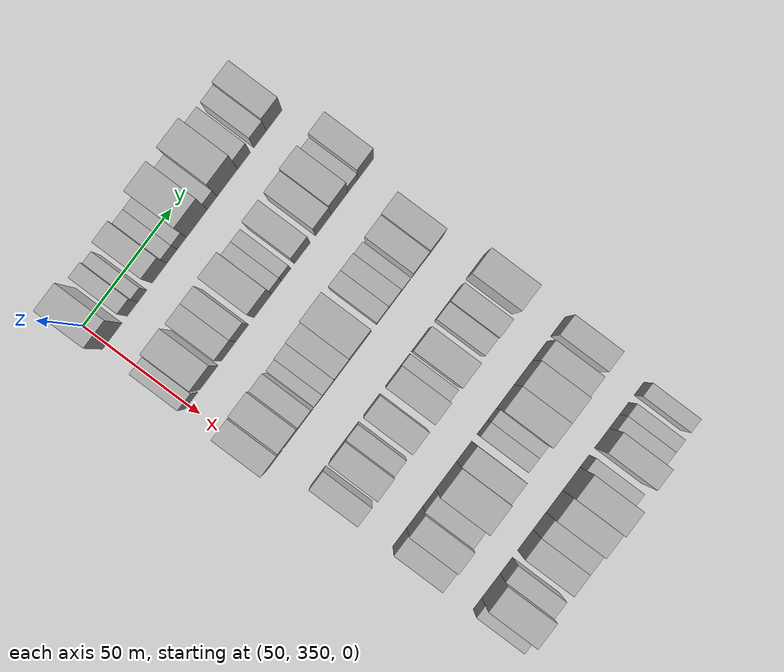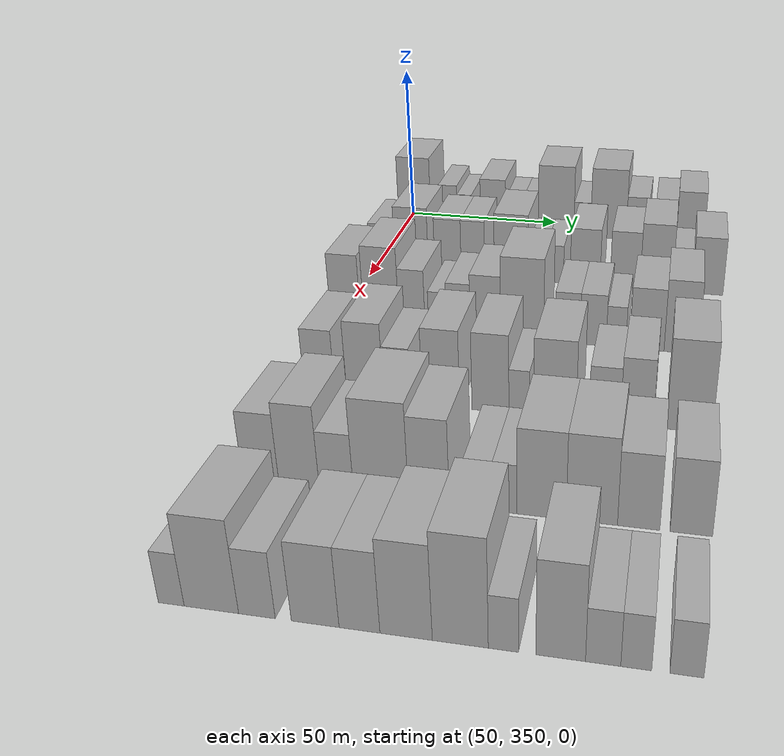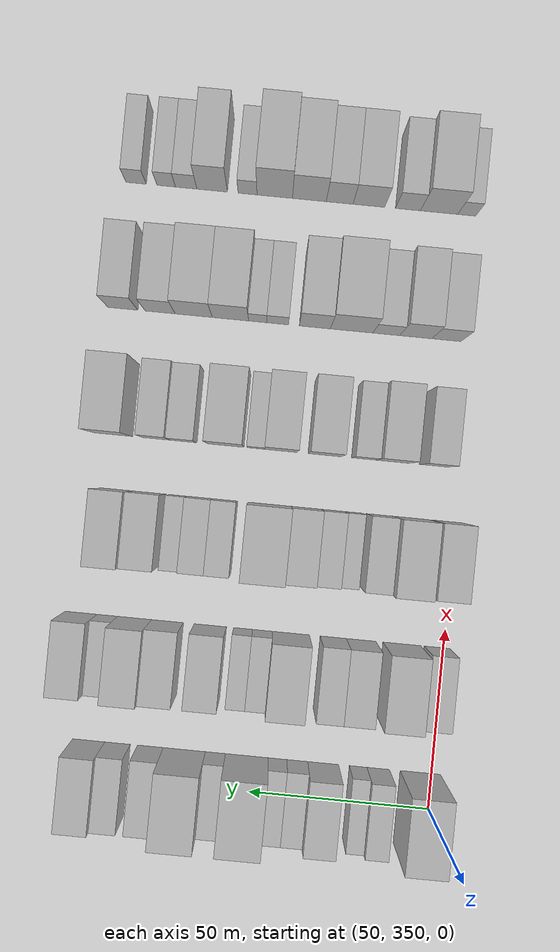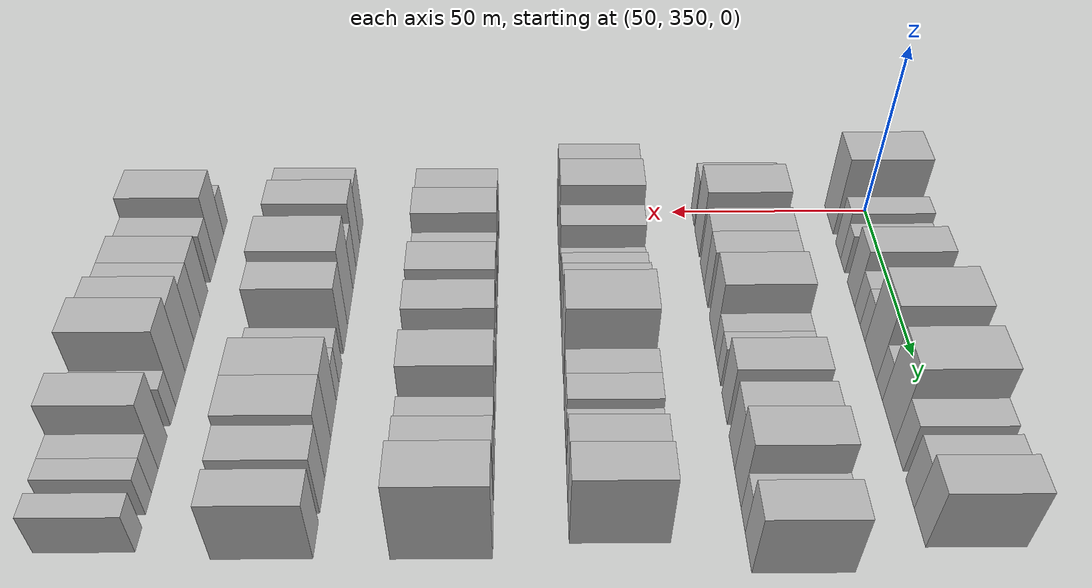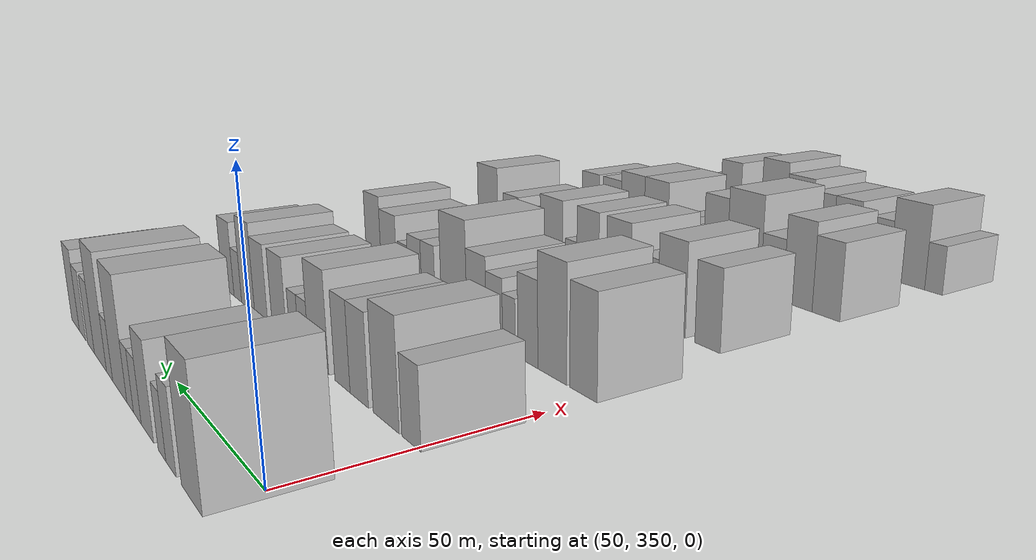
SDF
<sdf version="1.6">
 <world name="default">
  <model name="building_106">
   <static>1</static>
   <pose>50.0000 353.2103 0 0.000000 0.000000 0.000000</pose>
   <link name="link">
    <pose>0 0 12.00 0 0 0</pose>
    <collision name="collision"><geometry><box><size>20.0000 11.1864 24.0000</size></box></geometry></collision>
    <visual name="visual">
     <cast_shadows>0</cast_shadows>
     <geometry><box><size>20.0000 11.1864 24.0000</size></box></geometry>
     <material>
      <script>
       <uri>model://HANNAS_wall/materials/scripts</uri>
       <uri>model://HANNAS_wall/materials/textures</uri>
       <name>vrc/HANNAS_wall</name>
      </script>
     </material>
    </visual>
   </link>
  </model>
  <model name="building_107">
   <static>1</static>
   <pose>50.0000 364.9234 0 0.000000 0.000000 0.000000</pose>
   <link name="link">
    <pose>0 0 7.50 0 0 0</pose>
    <collision name="collision"><geometry><box><size>20.0000 6.2398 15.0000</size></box></geometry></collision>
    <visual name="visual">
     <cast_shadows>0</cast_shadows>
     <geometry><box><size>20.0000 6.2398 15.0000</size></box></geometry>
     <material>
      <script>
       <uri>model://HANNAS_wall/materials/scripts</uri>
       <uri>model://HANNAS_wall/materials/textures</uri>
       <name>vrc/HANNAS_wall</name>
      </script>
     </material>
    </visual>
   </link>
  </model>
  <model name="building_108">
   <static>1</static>
   <pose>50.0000 370.4922 0 0.000000 0.000000 0.000000</pose>
   <link name="link">
    <pose>0 0 6.00 0 0 0</pose>
    <collision name="collision"><geometry><box><size>20.0000 4.8976 12.0000</size></box></geometry></collision>
    <visual name="visual">
     <cast_shadows>0</cast_shadows>
     <geometry><box><size>20.0000 4.8976 12.0000</size></box></geometry>
     <material>
      <script>
       <uri>model://HANNAS_wall/materials/scripts</uri>
       <uri>model://HANNAS_wall/materials/textures</uri>
       <name>vrc/HANNAS_wall</name>
      </script>
     </material>
    </visual>
   </link>
  </model>
  <model name="building_109">
   <static>1</static>
   <pose>50.0000 380.2390 0 0.000000 0.000000 0.000000</pose>
   <link name="link">
    <pose>0 0 9.00 0 0 0</pose>
    <collision name="collision"><geometry><box><size>20.0000 8.5961 18.0000</size></box></geometry></collision>
    <visual name="visual">
     <cast_shadows>0</cast_shadows>
     <geometry><box><size>20.0000 8.5961 18.0000</size></box></geometry>
     <material>
      <script>
       <uri>model://HANNAS_wall/materials/scripts</uri>
       <uri>model://HANNAS_wall/materials/textures</uri>
       <name>vrc/HANNAS_wall</name>
      </script>
     </material>
    </visual>
   </link>
  </model>
  <model name="building_110">
   <static>1</static>
   <pose>50.0000 387.4565 0 0.000000 0.000000 0.000000</pose>
   <link name="link">
    <pose>0 0 6.00 0 0 0</pose>
    <collision name="collision"><geometry><box><size>20.0000 5.8388 12.0000</size></box></geometry></collision>
    <visual name="visual">
     <cast_shadows>0</cast_shadows>
     <geometry><box><size>20.0000 5.8388 12.0000</size></box></geometry>
     <material>
      <script>
       <uri>model://HANNAS_wall/materials/scripts</uri>
       <uri>model://HANNAS_wall/materials/textures</uri>
       <name>vrc/HANNAS_wall</name>
      </script>
     </material>
    </visual>
   </link>
  </model>
  <model name="building_111">
   <static>1</static>
   <pose>50.0000 392.9682 0 0.000000 0.000000 0.000000</pose>
   <link name="link">
    <pose>0 0 6.00 0 0 0</pose>
    <collision name="collision"><geometry><box><size>20.0000 5.1846 12.0000</size></box></geometry></collision>
    <visual name="visual">
     <cast_shadows>0</cast_shadows>
     <geometry><box><size>20.0000 5.1846 12.0000</size></box></geometry>
     <material>
      <script>
       <uri>model://HANNAS_wall/materials/scripts</uri>
       <uri>model://HANNAS_wall/materials/textures</uri>
       <name>vrc/HANNAS_wall</name>
      </script>
     </material>
    </visual>
   </link>
  </model>
  <model name="building_112">
   <static>1</static>
   <pose>50.0000 401.5114 0 0.000000 0.000000 0.000000</pose>
   <link name="link">
    <pose>0 0 12.00 0 0 0</pose>
    <collision name="collision"><geometry><box><size>20.0000 11.9017 24.0000</size></box></geometry></collision>
    <visual name="visual">
     <cast_shadows>0</cast_shadows>
     <geometry><box><size>20.0000 11.9017 24.0000</size></box></geometry>
     <material>
      <script>
       <uri>model://HANNAS_wall/materials/scripts</uri>
       <uri>model://HANNAS_wall/materials/textures</uri>
       <name>vrc/HANNAS_wall</name>
      </script>
     </material>
    </visual>
   </link>
  </model>
  <model name="building_113">
   <static>1</static>
   <pose>50.0000 410.2483 0 0.000000 0.000000 0.000000</pose>
   <link name="link">
    <pose>0 0 6.00 0 0 0</pose>
    <collision name="collision"><geometry><box><size>20.0000 5.5721 12.0000</size></box></geometry></collision>
    <visual name="visual">
     <cast_shadows>0</cast_shadows>
     <geometry><box><size>20.0000 5.5721 12.0000</size></box></geometry>
     <material>
      <script>
       <uri>model://HANNAS_wall/materials/scripts</uri>
       <uri>model://HANNAS_wall/materials/textures</uri>
       <name>vrc/HANNAS_wall</name>
      </script>
     </material>
    </visual>
   </link>
  </model>
  <model name="building_114">
   <static>1</static>
   <pose>50.0000 418.8916 0 0.000000 0.000000 0.000000</pose>
   <link name="link">
    <pose>0 0 12.00 0 0 0</pose>
    <collision name="collision"><geometry><box><size>20.0000 11.7144 24.0000</size></box></geometry></collision>
    <visual name="visual">
     <cast_shadows>0</cast_shadows>
     <geometry><box><size>20.0000 11.7144 24.0000</size></box></geometry>
     <material>
      <script>
       <uri>model://HANNAS_wall/materials/scripts</uri>
       <uri>model://HANNAS_wall/materials/textures</uri>
       <name>vrc/HANNAS_wall</name>
      </script>
     </material>
    </visual>
   </link>
  </model>
  <model name="building_115">
   <static>1</static>
   <pose>50.0000 428.3307 0 0.000000 0.000000 0.000000</pose>
   <link name="link">
    <pose>0 0 7.50 0 0 0</pose>
    <collision name="collision"><geometry><box><size>20.0000 7.1638 15.0000</size></box></geometry></collision>
    <visual name="visual">
     <cast_shadows>0</cast_shadows>
     <geometry><box><size>20.0000 7.1638 15.0000</size></box></geometry>
     <material>
      <script>
       <uri>model://HANNAS_wall/materials/scripts</uri>
       <uri>model://HANNAS_wall/materials/textures</uri>
       <name>vrc/HANNAS_wall</name>
      </script>
     </material>
    </visual>
   </link>
  </model>
  <model name="building_116">
   <static>1</static>
   <pose>50.0000 437.4541 0 0.000000 0.000000 0.000000</pose>
   <link name="link">
    <pose>0 0 7.50 0 0 0</pose>
    <collision name="collision"><geometry><box><size>20.0000 7.0830 15.0000</size></box></geometry></collision>
    <visual name="visual">
     <cast_shadows>0</cast_shadows>
     <geometry><box><size>20.0000 7.0830 15.0000</size></box></geometry>
     <material>
      <script>
       <uri>model://HANNAS_wall/materials/scripts</uri>
       <uri>model://HANNAS_wall/materials/textures</uri>
       <name>vrc/HANNAS_wall</name>
      </script>
     </material>
    </visual>
   </link>
  </model>
  <model name="building_117">
   <static>1</static>
   <pose>50.0000 445.4667 0 0.000000 0.000000 0.000000</pose>
   <link name="link">
    <pose>0 0 9.00 0 0 0</pose>
    <collision name="collision"><geometry><box><size>20.0000 8.9421 18.0000</size></box></geometry></collision>
    <visual name="visual">
     <cast_shadows>0</cast_shadows>
     <geometry><box><size>20.0000 8.9421 18.0000</size></box></geometry>
     <material>
      <script>
       <uri>model://HANNAS_wall/materials/scripts</uri>
       <uri>model://HANNAS_wall/materials/textures</uri>
       <name>vrc/HANNAS_wall</name>
      </script>
     </material>
    </visual>
   </link>
  </model>
  <model name="building_234">
   <static>1</static>
   <pose>85.0000 351.9586 0 0.000000 0.000000 0.000000</pose>
   <link name="link">
    <pose>0 0 7.50 0 0 0</pose>
    <collision name="collision"><geometry><box><size>20.0000 7.0922 15.0000</size></box></geometry></collision>
    <visual name="visual">
     <cast_shadows>0</cast_shadows>
     <geometry><box><size>20.0000 7.0922 15.0000</size></box></geometry>
     <material>
      <script>
       <uri>model://HANNAS_wall/materials/scripts</uri>
       <uri>model://HANNAS_wall/materials/textures</uri>
       <name>vrc/HANNAS_wall</name>
      </script>
     </material>
    </visual>
   </link>
  </model>
  <model name="building_235">
   <static>1</static>
   <pose>85.0000 361.7498 0 0.000000 0.000000 0.000000</pose>
   <link name="link">
    <pose>0 0 10.50 0 0 0</pose>
    <collision name="collision"><geometry><box><size>20.0000 10.4904 21.0000</size></box></geometry></collision>
    <visual name="visual">
     <cast_shadows>0</cast_shadows>
     <geometry><box><size>20.0000 10.4904 21.0000</size></box></geometry>
     <material>
      <script>
       <uri>model://HANNAS_wall/materials/scripts</uri>
       <uri>model://HANNAS_wall/materials/textures</uri>
       <name>vrc/HANNAS_wall</name>
      </script>
     </material>
    </visual>
   </link>
  </model>
  <model name="building_236">
   <static>1</static>
   <pose>85.0000 373.1111 0 0.000000 0.000000 0.000000</pose>
   <link name="link">
    <pose>0 0 9.00 0 0 0</pose>
    <collision name="collision"><geometry><box><size>20.0000 8.2321 18.0000</size></box></geometry></collision>
    <visual name="visual">
     <cast_shadows>0</cast_shadows>
     <geometry><box><size>20.0000 8.2321 18.0000</size></box></geometry>
     <material>
      <script>
       <uri>model://HANNAS_wall/materials/scripts</uri>
       <uri>model://HANNAS_wall/materials/textures</uri>
       <name>vrc/HANNAS_wall</name>
      </script>
     </material>
    </visual>
   </link>
  </model>
  <model name="building_237">
   <static>1</static>
   <pose>85.0000 380.8473 0 0.000000 0.000000 0.000000</pose>
   <link name="link">
    <pose>0 0 9.00 0 0 0</pose>
    <collision name="collision"><geometry><box><size>20.0000 7.2404 18.0000</size></box></geometry></collision>
    <visual name="visual">
     <cast_shadows>0</cast_shadows>
     <geometry><box><size>20.0000 7.2404 18.0000</size></box></geometry>
     <material>
      <script>
       <uri>model://HANNAS_wall/materials/scripts</uri>
       <uri>model://HANNAS_wall/materials/textures</uri>
       <name>vrc/HANNAS_wall</name>
      </script>
     </material>
    </visual>
   </link>
  </model>
  <model name="building_238">
   <static>1</static>
   <pose>85.0000 392.6241 0 0.000000 0.000000 0.000000</pose>
   <link name="link">
    <pose>0 0 10.50 0 0 0</pose>
    <collision name="collision"><geometry><box><size>20.0000 10.3131 21.0000</size></box></geometry></collision>
    <visual name="visual">
     <cast_shadows>0</cast_shadows>
     <geometry><box><size>20.0000 10.3131 21.0000</size></box></geometry>
     <material>
      <script>
       <uri>model://HANNAS_wall/materials/scripts</uri>
       <uri>model://HANNAS_wall/materials/textures</uri>
       <name>vrc/HANNAS_wall</name>
      </script>
     </material>
    </visual>
   </link>
  </model>
  <model name="building_239">
   <static>1</static>
   <pose>85.0000 400.5244 0 0.000000 0.000000 0.000000</pose>
   <link name="link">
    <pose>0 0 6.00 0 0 0</pose>
    <collision name="collision"><geometry><box><size>20.0000 5.4877 12.0000</size></box></geometry></collision>
    <visual name="visual">
     <cast_shadows>0</cast_shadows>
     <geometry><box><size>20.0000 5.4877 12.0000</size></box></geometry>
     <material>
      <script>
       <uri>model://HANNAS_wall/materials/scripts</uri>
       <uri>model://HANNAS_wall/materials/textures</uri>
       <name>vrc/HANNAS_wall</name>
      </script>
     </material>
    </visual>
   </link>
  </model>
  <model name="building_240">
   <static>1</static>
   <pose>85.0000 405.8968 0 0.000000 0.000000 0.000000</pose>
   <link name="link">
    <pose>0 0 6.00 0 0 0</pose>
    <collision name="collision"><geometry><box><size>20.0000 5.2571 12.0000</size></box></geometry></collision>
    <visual name="visual">
     <cast_shadows>0</cast_shadows>
     <geometry><box><size>20.0000 5.2571 12.0000</size></box></geometry>
     <material>
      <script>
       <uri>model://HANNAS_wall/materials/scripts</uri>
       <uri>model://HANNAS_wall/materials/textures</uri>
       <name>vrc/HANNAS_wall</name>
      </script>
     </material>
    </visual>
   </link>
  </model>
  <model name="building_241">
   <static>1</static>
   <pose>85.0000 415.0088 0 0.000000 0.000000 0.000000</pose>
   <link name="link">
    <pose>0 0 9.00 0 0 0</pose>
    <collision name="collision"><geometry><box><size>20.0000 8.9669 18.0000</size></box></geometry></collision>
    <visual name="visual">
     <cast_shadows>0</cast_shadows>
     <geometry><box><size>20.0000 8.9669 18.0000</size></box></geometry>
     <material>
      <script>
       <uri>model://HANNAS_wall/materials/scripts</uri>
       <uri>model://HANNAS_wall/materials/textures</uri>
       <name>vrc/HANNAS_wall</name>
      </script>
     </material>
    </visual>
   </link>
  </model>
  <model name="building_242">
   <static>1</static>
   <pose>85.0000 426.9141 0 0.000000 0.000000 0.000000</pose>
   <link name="link">
    <pose>0 0 9.00 0 0 0</pose>
    <collision name="collision"><geometry><box><size>20.0000 8.8438 18.0000</size></box></geometry></collision>
    <visual name="visual">
     <cast_shadows>0</cast_shadows>
     <geometry><box><size>20.0000 8.8438 18.0000</size></box></geometry>
     <material>
      <script>
       <uri>model://HANNAS_wall/materials/scripts</uri>
       <uri>model://HANNAS_wall/materials/textures</uri>
       <name>vrc/HANNAS_wall</name>
      </script>
     </material>
    </visual>
   </link>
  </model>
  <model name="building_243">
   <static>1</static>
   <pose>85.0000 436.0678 0 0.000000 0.000000 0.000000</pose>
   <link name="link">
    <pose>0 0 10.50 0 0 0</pose>
    <collision name="collision"><geometry><box><size>20.0000 9.4635 21.0000</size></box></geometry></collision>
    <visual name="visual">
     <cast_shadows>0</cast_shadows>
     <geometry><box><size>20.0000 9.4635 21.0000</size></box></geometry>
     <material>
      <script>
       <uri>model://HANNAS_wall/materials/scripts</uri>
       <uri>model://HANNAS_wall/materials/textures</uri>
       <name>vrc/HANNAS_wall</name>
      </script>
     </material>
    </visual>
   </link>
  </model>
  <model name="building_244">
   <static>1</static>
   <pose>85.0000 443.6584 0 0.000000 0.000000 0.000000</pose>
   <link name="link">
    <pose>0 0 6.00 0 0 0</pose>
    <collision name="collision"><geometry><box><size>20.0000 5.7178 12.0000</size></box></geometry></collision>
    <visual name="visual">
     <cast_shadows>0</cast_shadows>
     <geometry><box><size>20.0000 5.7178 12.0000</size></box></geometry>
     <material>
      <script>
       <uri>model://HANNAS_wall/materials/scripts</uri>
       <uri>model://HANNAS_wall/materials/textures</uri>
       <name>vrc/HANNAS_wall</name>
      </script>
     </material>
    </visual>
   </link>
  </model>
  <model name="building_245">
   <static>1</static>
   <pose>85.0000 450.9712 0 0.000000 0.000000 0.000000</pose>
   <link name="link">
    <pose>0 0 9.00 0 0 0</pose>
    <collision name="collision"><geometry><box><size>20.0000 8.9077 18.0000</size></box></geometry></collision>
    <visual name="visual">
     <cast_shadows>0</cast_shadows>
     <geometry><box><size>20.0000 8.9077 18.0000</size></box></geometry>
     <material>
      <script>
       <uri>model://HANNAS_wall/materials/scripts</uri>
       <uri>model://HANNAS_wall/materials/textures</uri>
       <name>vrc/HANNAS_wall</name>
      </script>
     </material>
    </visual>
   </link>
  </model>
  <model name="building_357">
   <static>1</static>
   <pose>120.0000 352.5232 0 0.000000 0.000000 0.000000</pose>
   <link name="link">
    <pose>0 0 10.50 0 0 0</pose>
    <collision name="collision"><geometry><box><size>20.0000 8.6559 21.0000</size></box></geometry></collision>
    <visual name="visual">
     <cast_shadows>0</cast_shadows>
     <geometry><box><size>20.0000 8.6559 21.0000</size></box></geometry>
     <material>
      <script>
       <uri>model://HANNAS_wall/materials/scripts</uri>
       <uri>model://HANNAS_wall/materials/textures</uri>
       <name>vrc/HANNAS_wall</name>
      </script>
     </material>
    </visual>
   </link>
  </model>
  <model name="building_358">
   <static>1</static>
   <pose>120.0000 362.8149 0 0.000000 0.000000 0.000000</pose>
   <link name="link">
    <pose>0 0 12.00 0 0 0</pose>
    <collision name="collision"><geometry><box><size>20.0000 9.9275 24.0000</size></box></geometry></collision>
    <visual name="visual">
     <cast_shadows>0</cast_shadows>
     <geometry><box><size>20.0000 9.9275 24.0000</size></box></geometry>
     <material>
      <script>
       <uri>model://HANNAS_wall/materials/scripts</uri>
       <uri>model://HANNAS_wall/materials/textures</uri>
       <name>vrc/HANNAS_wall</name>
      </script>
     </material>
    </visual>
   </link>
  </model>
  <model name="building_359">
   <static>1</static>
   <pose>120.0000 371.4363 0 0.000000 0.000000 0.000000</pose>
   <link name="link">
    <pose>0 0 9.00 0 0 0</pose>
    <collision name="collision"><geometry><box><size>20.0000 7.3154 18.0000</size></box></geometry></collision>
    <visual name="visual">
     <cast_shadows>0</cast_shadows>
     <geometry><box><size>20.0000 7.3154 18.0000</size></box></geometry>
     <material>
      <script>
       <uri>model://HANNAS_wall/materials/scripts</uri>
       <uri>model://HANNAS_wall/materials/textures</uri>
       <name>vrc/HANNAS_wall</name>
      </script>
     </material>
    </visual>
   </link>
  </model>
  <model name="building_360">
   <static>1</static>
   <pose>120.0000 378.5661 0 0.000000 0.000000 0.000000</pose>
   <link name="link">
    <pose>0 0 6.00 0 0 0</pose>
    <collision name="collision"><geometry><box><size>20.0000 4.9441 12.0000</size></box></geometry></collision>
    <visual name="visual">
     <cast_shadows>0</cast_shadows>
     <geometry><box><size>20.0000 4.9441 12.0000</size></box></geometry>
     <material>
      <script>
       <uri>model://HANNAS_wall/materials/scripts</uri>
       <uri>model://HANNAS_wall/materials/textures</uri>
       <name>vrc/HANNAS_wall</name>
      </script>
     </material>
    </visual>
   </link>
  </model>
  <model name="building_361">
   <static>1</static>
   <pose>120.0000 384.3277 0 0.000000 0.000000 0.000000</pose>
   <link name="link">
    <pose>0 0 7.50 0 0 0</pose>
    <collision name="collision"><geometry><box><size>20.0000 6.5793 15.0000</size></box></geometry></collision>
    <visual name="visual">
     <cast_shadows>0</cast_shadows>
     <geometry><box><size>20.0000 6.5793 15.0000</size></box></geometry>
     <material>
      <script>
       <uri>model://HANNAS_wall/materials/scripts</uri>
       <uri>model://HANNAS_wall/materials/textures</uri>
       <name>vrc/HANNAS_wall</name>
      </script>
     </material>
    </visual>
   </link>
  </model>
  <model name="building_362">
   <static>1</static>
   <pose>120.0000 391.7839 0 0.000000 0.000000 0.000000</pose>
   <link name="link">
    <pose>0 0 9.00 0 0 0</pose>
    <collision name="collision"><geometry><box><size>20.0000 8.3331 18.0000</size></box></geometry></collision>
    <visual name="visual">
     <cast_shadows>0</cast_shadows>
     <geometry><box><size>20.0000 8.3331 18.0000</size></box></geometry>
     <material>
      <script>
       <uri>model://HANNAS_wall/materials/scripts</uri>
       <uri>model://HANNAS_wall/materials/textures</uri>
       <name>vrc/HANNAS_wall</name>
      </script>
     </material>
    </visual>
   </link>
  </model>
  <model name="building_363">
   <static>1</static>
   <pose>120.0000 401.8527 0 0.000000 0.000000 0.000000</pose>
   <link name="link">
    <pose>0 0 12.00 0 0 0</pose>
    <collision name="collision"><geometry><box><size>20.0000 11.8045 24.0000</size></box></geometry></collision>
    <visual name="visual">
     <cast_shadows>0</cast_shadows>
     <geometry><box><size>20.0000 11.8045 24.0000</size></box></geometry>
     <material>
      <script>
       <uri>model://HANNAS_wall/materials/scripts</uri>
       <uri>model://HANNAS_wall/materials/textures</uri>
       <name>vrc/HANNAS_wall</name>
      </script>
     </material>
    </visual>
   </link>
  </model>
  <model name="building_364">
   <static>1</static>
   <pose>120.0000 414.1285 0 0.000000 0.000000 0.000000</pose>
   <link name="link">
    <pose>0 0 7.50 0 0 0</pose>
    <collision name="collision"><geometry><box><size>20.0000 6.7471 15.0000</size></box></geometry></collision>
    <visual name="visual">
     <cast_shadows>0</cast_shadows>
     <geometry><box><size>20.0000 6.7471 15.0000</size></box></geometry>
     <material>
      <script>
       <uri>model://HANNAS_wall/materials/scripts</uri>
       <uri>model://HANNAS_wall/materials/textures</uri>
       <name>vrc/HANNAS_wall</name>
      </script>
     </material>
    </visual>
   </link>
  </model>
  <model name="building_365">
   <static>1</static>
   <pose>120.0000 420.9926 0 0.000000 0.000000 0.000000</pose>
   <link name="link">
    <pose>0 0 7.50 0 0 0</pose>
    <collision name="collision"><geometry><box><size>20.0000 6.9811 15.0000</size></box></geometry></collision>
    <visual name="visual">
     <cast_shadows>0</cast_shadows>
     <geometry><box><size>20.0000 6.9811 15.0000</size></box></geometry>
     <material>
      <script>
       <uri>model://HANNAS_wall/materials/scripts</uri>
       <uri>model://HANNAS_wall/materials/textures</uri>
       <name>vrc/HANNAS_wall</name>
      </script>
     </material>
    </visual>
   </link>
  </model>
  <model name="building_366">
   <static>1</static>
   <pose>120.0000 427.0913 0 0.000000 0.000000 0.000000</pose>
   <link name="link">
    <pose>0 0 6.00 0 0 0</pose>
    <collision name="collision"><geometry><box><size>20.0000 5.2164 12.0000</size></box></geometry></collision>
    <visual name="visual">
     <cast_shadows>0</cast_shadows>
     <geometry><box><size>20.0000 5.2164 12.0000</size></box></geometry>
     <material>
      <script>
       <uri>model://HANNAS_wall/materials/scripts</uri>
       <uri>model://HANNAS_wall/materials/textures</uri>
       <name>vrc/HANNAS_wall</name>
      </script>
     </material>
    </visual>
   </link>
  </model>
  <model name="building_367">
   <static>1</static>
   <pose>120.0000 435.1870 0 0.000000 0.000000 0.000000</pose>
   <link name="link">
    <pose>0 0 9.00 0 0 0</pose>
    <collision name="collision"><geometry><box><size>20.0000 8.9749 18.0000</size></box></geometry></collision>
    <visual name="visual">
     <cast_shadows>0</cast_shadows>
     <geometry><box><size>20.0000 8.9749 18.0000</size></box></geometry>
     <material>
      <script>
       <uri>model://HANNAS_wall/materials/scripts</uri>
       <uri>model://HANNAS_wall/materials/textures</uri>
       <name>vrc/HANNAS_wall</name>
      </script>
     </material>
    </visual>
   </link>
  </model>
  <model name="building_368">
   <static>1</static>
   <pose>120.0000 444.1367 0 0.000000 0.000000 0.000000</pose>
   <link name="link">
    <pose>0 0 10.50 0 0 0</pose>
    <collision name="collision"><geometry><box><size>20.0000 8.9246 21.0000</size></box></geometry></collision>
    <visual name="visual">
     <cast_shadows>0</cast_shadows>
     <geometry><box><size>20.0000 8.9246 21.0000</size></box></geometry>
     <material>
      <script>
       <uri>model://HANNAS_wall/materials/scripts</uri>
       <uri>model://HANNAS_wall/materials/textures</uri>
       <name>vrc/HANNAS_wall</name>
      </script>
     </material>
    </visual>
   </link>
  </model>
  <model name="building_489">
   <static>1</static>
   <pose>155.0000 357.8309 0 0.000000 0.000000 0.000000</pose>
   <link name="link">
    <pose>0 0 9.00 0 0 0</pose>
    <collision name="collision"><geometry><box><size>20.0000 7.7563 18.0000</size></box></geometry></collision>
    <visual name="visual">
     <cast_shadows>0</cast_shadows>
     <geometry><box><size>20.0000 7.7563 18.0000</size></box></geometry>
     <material>
      <script>
       <uri>model://HANNAS_wall/materials/scripts</uri>
       <uri>model://HANNAS_wall/materials/textures</uri>
       <name>vrc/HANNAS_wall</name>
      </script>
     </material>
    </visual>
   </link>
  </model>
  <model name="building_490">
   <static>1</static>
   <pose>155.0000 369.3253 0 0.000000 0.000000 0.000000</pose>
   <link name="link">
    <pose>0 0 10.50 0 0 0</pose>
    <collision name="collision"><geometry><box><size>20.0000 9.2325 21.0000</size></box></geometry></collision>
    <visual name="visual">
     <cast_shadows>0</cast_shadows>
     <geometry><box><size>20.0000 9.2325 21.0000</size></box></geometry>
     <material>
      <script>
       <uri>model://HANNAS_wall/materials/scripts</uri>
       <uri>model://HANNAS_wall/materials/textures</uri>
       <name>vrc/HANNAS_wall</name>
      </script>
     </material>
    </visual>
   </link>
  </model>
  <model name="building_491">
   <static>1</static>
   <pose>155.0000 377.2664 0 0.000000 0.000000 0.000000</pose>
   <link name="link">
    <pose>0 0 7.50 0 0 0</pose>
    <collision name="collision"><geometry><box><size>20.0000 6.6496 15.0000</size></box></geometry></collision>
    <visual name="visual">
     <cast_shadows>0</cast_shadows>
     <geometry><box><size>20.0000 6.6496 15.0000</size></box></geometry>
     <material>
      <script>
       <uri>model://HANNAS_wall/materials/scripts</uri>
       <uri>model://HANNAS_wall/materials/textures</uri>
       <name>vrc/HANNAS_wall</name>
      </script>
     </material>
    </visual>
   </link>
  </model>
  <model name="building_492">
   <static>1</static>
   <pose>155.0000 388.1427 0 0.000000 0.000000 0.000000</pose>
   <link name="link">
    <pose>0 0 10.50 0 0 0</pose>
    <collision name="collision"><geometry><box><size>20.0000 9.1030 21.0000</size></box></geometry></collision>
    <visual name="visual">
     <cast_shadows>0</cast_shadows>
     <geometry><box><size>20.0000 9.1030 21.0000</size></box></geometry>
     <material>
      <script>
       <uri>model://HANNAS_wall/materials/scripts</uri>
       <uri>model://HANNAS_wall/materials/textures</uri>
       <name>vrc/HANNAS_wall</name>
      </script>
     </material>
    </visual>
   </link>
  </model>
  <model name="building_493">
   <static>1</static>
   <pose>155.0000 400.1454 0 0.000000 0.000000 0.000000</pose>
   <link name="link">
    <pose>0 0 10.50 0 0 0</pose>
    <collision name="collision"><geometry><box><size>20.0000 8.9024 21.0000</size></box></geometry></collision>
    <visual name="visual">
     <cast_shadows>0</cast_shadows>
     <geometry><box><size>20.0000 8.9024 21.0000</size></box></geometry>
     <material>
      <script>
       <uri>model://HANNAS_wall/materials/scripts</uri>
       <uri>model://HANNAS_wall/materials/textures</uri>
       <name>vrc/HANNAS_wall</name>
      </script>
     </material>
    </visual>
   </link>
  </model>
  <model name="building_494">
   <static>1</static>
   <pose>155.0000 407.0617 0 0.000000 0.000000 0.000000</pose>
   <link name="link">
    <pose>0 0 6.00 0 0 0</pose>
    <collision name="collision"><geometry><box><size>20.0000 4.9302 12.0000</size></box></geometry></collision>
    <visual name="visual">
     <cast_shadows>0</cast_shadows>
     <geometry><box><size>20.0000 4.9302 12.0000</size></box></geometry>
     <material>
      <script>
       <uri>model://HANNAS_wall/materials/scripts</uri>
       <uri>model://HANNAS_wall/materials/textures</uri>
       <name>vrc/HANNAS_wall</name>
      </script>
     </material>
    </visual>
   </link>
  </model>
  <model name="building_495">
   <static>1</static>
   <pose>155.0000 415.5650 0 0.000000 0.000000 0.000000</pose>
   <link name="link">
    <pose>0 0 10.50 0 0 0</pose>
    <collision name="collision"><geometry><box><size>20.0000 10.0763 21.0000</size></box></geometry></collision>
    <visual name="visual">
     <cast_shadows>0</cast_shadows>
     <geometry><box><size>20.0000 10.0763 21.0000</size></box></geometry>
     <material>
      <script>
       <uri>model://HANNAS_wall/materials/scripts</uri>
       <uri>model://HANNAS_wall/materials/textures</uri>
       <name>vrc/HANNAS_wall</name>
      </script>
     </material>
    </visual>
   </link>
  </model>
  <model name="building_496">
   <static>1</static>
   <pose>155.0000 427.2717 0 0.000000 0.000000 0.000000</pose>
   <link name="link">
    <pose>0 0 7.50 0 0 0</pose>
    <collision name="collision"><geometry><box><size>20.0000 7.3370 15.0000</size></box></geometry></collision>
    <visual name="visual">
     <cast_shadows>0</cast_shadows>
     <geometry><box><size>20.0000 7.3370 15.0000</size></box></geometry>
     <material>
      <script>
       <uri>model://HANNAS_wall/materials/scripts</uri>
       <uri>model://HANNAS_wall/materials/textures</uri>
       <name>vrc/HANNAS_wall</name>
      </script>
     </material>
    </visual>
   </link>
  </model>
  <model name="building_497">
   <static>1</static>
   <pose>155.0000 434.7221 0 0.000000 0.000000 0.000000</pose>
   <link name="link">
    <pose>0 0 9.00 0 0 0</pose>
    <collision name="collision"><geometry><box><size>20.0000 7.5639 18.0000</size></box></geometry></collision>
    <visual name="visual">
     <cast_shadows>0</cast_shadows>
     <geometry><box><size>20.0000 7.5639 18.0000</size></box></geometry>
     <material>
      <script>
       <uri>model://HANNAS_wall/materials/scripts</uri>
       <uri>model://HANNAS_wall/materials/textures</uri>
       <name>vrc/HANNAS_wall</name>
      </script>
     </material>
    </visual>
   </link>
  </model>
  <model name="building_498">
   <static>1</static>
   <pose>155.0000 446.7291 0 0.000000 0.000000 0.000000</pose>
   <link name="link">
    <pose>0 0 12.00 0 0 0</pose>
    <collision name="collision"><geometry><box><size>20.0000 10.4501 24.0000</size></box></geometry></collision>
    <visual name="visual">
     <cast_shadows>0</cast_shadows>
     <geometry><box><size>20.0000 10.4501 24.0000</size></box></geometry>
     <material>
      <script>
       <uri>model://HANNAS_wall/materials/scripts</uri>
       <uri>model://HANNAS_wall/materials/textures</uri>
       <name>vrc/HANNAS_wall</name>
      </script>
     </material>
    </visual>
   </link>
  </model>
  <model name="building_621">
   <static>1</static>
   <pose>190.0000 357.5613 0 0.000000 0.000000 0.000000</pose>
   <link name="link">
    <pose>0 0 9.00 0 0 0</pose>
    <collision name="collision"><geometry><box><size>20.0000 8.1006 18.0000</size></box></geometry></collision>
    <visual name="visual">
     <cast_shadows>0</cast_shadows>
     <geometry><box><size>20.0000 8.1006 18.0000</size></box></geometry>
     <material>
      <script>
       <uri>model://HANNAS_wall/materials/scripts</uri>
       <uri>model://HANNAS_wall/materials/textures</uri>
       <name>vrc/HANNAS_wall</name>
      </script>
     </material>
    </visual>
   </link>
  </model>
  <model name="building_622">
   <static>1</static>
   <pose>190.0000 366.0804 0 0.000000 0.000000 0.000000</pose>
   <link name="link">
    <pose>0 0 10.50 0 0 0</pose>
    <collision name="collision"><geometry><box><size>20.0000 8.9378 21.0000</size></box></geometry></collision>
    <visual name="visual">
     <cast_shadows>0</cast_shadows>
     <geometry><box><size>20.0000 8.9378 21.0000</size></box></geometry>
     <material>
      <script>
       <uri>model://HANNAS_wall/materials/scripts</uri>
       <uri>model://HANNAS_wall/materials/textures</uri>
       <name>vrc/HANNAS_wall</name>
      </script>
     </material>
    </visual>
   </link>
  </model>
  <model name="building_623">
   <static>1</static>
   <pose>190.0000 374.2909 0 0.000000 0.000000 0.000000</pose>
   <link name="link">
    <pose>0 0 7.50 0 0 0</pose>
    <collision name="collision"><geometry><box><size>20.0000 7.4830 15.0000</size></box></geometry></collision>
    <visual name="visual">
     <cast_shadows>0</cast_shadows>
     <geometry><box><size>20.0000 7.4830 15.0000</size></box></geometry>
     <material>
      <script>
       <uri>model://HANNAS_wall/materials/scripts</uri>
       <uri>model://HANNAS_wall/materials/textures</uri>
       <name>vrc/HANNAS_wall</name>
      </script>
     </material>
    </visual>
   </link>
  </model>
  <model name="building_624">
   <static>1</static>
   <pose>190.0000 383.9547 0 0.000000 0.000000 0.000000</pose>
   <link name="link">
    <pose>0 0 12.00 0 0 0</pose>
    <collision name="collision"><geometry><box><size>20.0000 11.8447 24.0000</size></box></geometry></collision>
    <visual name="visual">
     <cast_shadows>0</cast_shadows>
     <geometry><box><size>20.0000 11.8447 24.0000</size></box></geometry>
     <material>
      <script>
       <uri>model://HANNAS_wall/materials/scripts</uri>
       <uri>model://HANNAS_wall/materials/textures</uri>
       <name>vrc/HANNAS_wall</name>
      </script>
     </material>
    </visual>
   </link>
  </model>
  <model name="building_625">
   <static>1</static>
   <pose>190.0000 394.1983 0 0.000000 0.000000 0.000000</pose>
   <link name="link">
    <pose>0 0 10.50 0 0 0</pose>
    <collision name="collision"><geometry><box><size>20.0000 8.6425 21.0000</size></box></geometry></collision>
    <visual name="visual">
     <cast_shadows>0</cast_shadows>
     <geometry><box><size>20.0000 8.6425 21.0000</size></box></geometry>
     <material>
      <script>
       <uri>model://HANNAS_wall/materials/scripts</uri>
       <uri>model://HANNAS_wall/materials/textures</uri>
       <name>vrc/HANNAS_wall</name>
      </script>
     </material>
    </visual>
   </link>
  </model>
  <model name="building_626">
   <static>1</static>
   <pose>190.0000 404.5116 0 0.000000 0.000000 0.000000</pose>
   <link name="link">
    <pose>0 0 6.00 0 0 0</pose>
    <collision name="collision"><geometry><box><size>20.0000 5.9841 12.0000</size></box></geometry></collision>
    <visual name="visual">
     <cast_shadows>0</cast_shadows>
     <geometry><box><size>20.0000 5.9841 12.0000</size></box></geometry>
     <material>
      <script>
       <uri>model://HANNAS_wall/materials/scripts</uri>
       <uri>model://HANNAS_wall/materials/textures</uri>
       <name>vrc/HANNAS_wall</name>
      </script>
     </material>
    </visual>
   </link>
  </model>
  <model name="building_627">
   <static>1</static>
   <pose>190.0000 410.0540 0 0.000000 0.000000 0.000000</pose>
   <link name="link">
    <pose>0 0 6.00 0 0 0</pose>
    <collision name="collision"><geometry><box><size>20.0000 5.1006 12.0000</size></box></geometry></collision>
    <visual name="visual">
     <cast_shadows>0</cast_shadows>
     <geometry><box><size>20.0000 5.1006 12.0000</size></box></geometry>
     <material>
      <script>
       <uri>model://HANNAS_wall/materials/scripts</uri>
       <uri>model://HANNAS_wall/materials/textures</uri>
       <name>vrc/HANNAS_wall</name>
      </script>
     </material>
    </visual>
   </link>
  </model>
  <model name="building_628">
   <static>1</static>
   <pose>190.0000 417.6488 0 0.000000 0.000000 0.000000</pose>
   <link name="link">
    <pose>0 0 10.50 0 0 0</pose>
    <collision name="collision"><geometry><box><size>20.0000 10.0891 21.0000</size></box></geometry></collision>
    <visual name="visual">
     <cast_shadows>0</cast_shadows>
     <geometry><box><size>20.0000 10.0891 21.0000</size></box></geometry>
     <material>
      <script>
       <uri>model://HANNAS_wall/materials/scripts</uri>
       <uri>model://HANNAS_wall/materials/textures</uri>
       <name>vrc/HANNAS_wall</name>
      </script>
     </material>
    </visual>
   </link>
  </model>
  <model name="building_629">
   <static>1</static>
   <pose>190.0000 427.8553 0 0.000000 0.000000 0.000000</pose>
   <link name="link">
    <pose>0 0 10.50 0 0 0</pose>
    <collision name="collision"><geometry><box><size>20.0000 10.3238 21.0000</size></box></geometry></collision>
    <visual name="visual">
     <cast_shadows>0</cast_shadows>
     <geometry><box><size>20.0000 10.3238 21.0000</size></box></geometry>
     <material>
      <script>
       <uri>model://HANNAS_wall/materials/scripts</uri>
       <uri>model://HANNAS_wall/materials/textures</uri>
       <name>vrc/HANNAS_wall</name>
      </script>
     </material>
    </visual>
   </link>
  </model>
  <model name="building_630">
   <static>1</static>
   <pose>190.0000 437.2240 0 0.000000 0.000000 0.000000</pose>
   <link name="link">
    <pose>0 0 9.00 0 0 0</pose>
    <collision name="collision"><geometry><box><size>20.0000 8.4136 18.0000</size></box></geometry></collision>
    <visual name="visual">
     <cast_shadows>0</cast_shadows>
     <geometry><box><size>20.0000 8.4136 18.0000</size></box></geometry>
     <material>
      <script>
       <uri>model://HANNAS_wall/materials/scripts</uri>
       <uri>model://HANNAS_wall/materials/textures</uri>
       <name>vrc/HANNAS_wall</name>
      </script>
     </material>
    </visual>
   </link>
  </model>
  <model name="building_631">
   <static>1</static>
   <pose>190.0000 447.5960 0 0.000000 0.000000 0.000000</pose>
   <link name="link">
    <pose>0 0 9.00 0 0 0</pose>
    <collision name="collision"><geometry><box><size>20.0000 8.3305 18.0000</size></box></geometry></collision>
    <visual name="visual">
     <cast_shadows>0</cast_shadows>
     <geometry><box><size>20.0000 8.3305 18.0000</size></box></geometry>
     <material>
      <script>
       <uri>model://HANNAS_wall/materials/scripts</uri>
       <uri>model://HANNAS_wall/materials/textures</uri>
       <name>vrc/HANNAS_wall</name>
      </script>
     </material>
    </visual>
   </link>
  </model>
  <model name="building_737">
   <static>1</static>
   <pose>225.0000 355.2898 0 0.000000 0.000000 0.000000</pose>
   <link name="link">
    <pose>0 0 6.00 0 0 0</pose>
    <collision name="collision"><geometry><box><size>20.0000 5.0150 12.0000</size></box></geometry></collision>
    <visual name="visual">
     <cast_shadows>0</cast_shadows>
     <geometry><box><size>20.0000 5.0150 12.0000</size></box></geometry>
     <material>
      <script>
       <uri>model://HANNAS_wall/materials/scripts</uri>
       <uri>model://HANNAS_wall/materials/textures</uri>
       <name>vrc/HANNAS_wall</name>
      </script>
     </material>
    </visual>
   </link>
  </model>
  <model name="building_738">
   <static>1</static>
   <pose>225.0000 363.0116 0 0.000000 0.000000 0.000000</pose>
   <link name="link">
    <pose>0 0 10.50 0 0 0</pose>
    <collision name="collision"><geometry><box><size>20.0000 10.4286 21.0000</size></box></geometry></collision>
    <visual name="visual">
     <cast_shadows>0</cast_shadows>
     <geometry><box><size>20.0000 10.4286 21.0000</size></box></geometry>
     <material>
      <script>
       <uri>model://HANNAS_wall/materials/scripts</uri>
       <uri>model://HANNAS_wall/materials/textures</uri>
       <name>vrc/HANNAS_wall</name>
      </script>
     </material>
    </visual>
   </link>
  </model>
  <model name="building_739">
   <static>1</static>
   <pose>225.0000 371.6804 0 0.000000 0.000000 0.000000</pose>
   <link name="link">
    <pose>0 0 7.50 0 0 0</pose>
    <collision name="collision"><geometry><box><size>20.0000 6.9091 15.0000</size></box></geometry></collision>
    <visual name="visual">
     <cast_shadows>0</cast_shadows>
     <geometry><box><size>20.0000 6.9091 15.0000</size></box></geometry>
     <material>
      <script>
       <uri>model://HANNAS_wall/materials/scripts</uri>
       <uri>model://HANNAS_wall/materials/textures</uri>
       <name>vrc/HANNAS_wall</name>
      </script>
     </material>
    </visual>
   </link>
  </model>
  <model name="building_740">
   <static>1</static>
   <pose>225.0000 382.5512 0 0.000000 0.000000 0.000000</pose>
   <link name="link">
    <pose>0 0 9.00 0 0 0</pose>
    <collision name="collision"><geometry><box><size>20.0000 8.8326 18.0000</size></box></geometry></collision>
    <visual name="visual">
     <cast_shadows>0</cast_shadows>
     <geometry><box><size>20.0000 8.8326 18.0000</size></box></geometry>
     <material>
      <script>
       <uri>model://HANNAS_wall/materials/scripts</uri>
       <uri>model://HANNAS_wall/materials/textures</uri>
       <name>vrc/HANNAS_wall</name>
      </script>
     </material>
    </visual>
   </link>
  </model>
  <model name="building_741">
   <static>1</static>
   <pose>225.0000 390.6934 0 0.000000 0.000000 0.000000</pose>
   <link name="link">
    <pose>0 0 9.00 0 0 0</pose>
    <collision name="collision"><geometry><box><size>20.0000 7.4519 18.0000</size></box></geometry></collision>
    <visual name="visual">
     <cast_shadows>0</cast_shadows>
     <geometry><box><size>20.0000 7.4519 18.0000</size></box></geometry>
     <material>
      <script>
       <uri>model://HANNAS_wall/materials/scripts</uri>
       <uri>model://HANNAS_wall/materials/textures</uri>
       <name>vrc/HANNAS_wall</name>
      </script>
     </material>
    </visual>
   </link>
  </model>
  <model name="building_742">
   <static>1</static>
   <pose>225.0000 399.1145 0 0.000000 0.000000 0.000000</pose>
   <link name="link">
    <pose>0 0 10.50 0 0 0</pose>
    <collision name="collision"><geometry><box><size>20.0000 9.3903 21.0000</size></box></geometry></collision>
    <visual name="visual">
     <cast_shadows>0</cast_shadows>
     <geometry><box><size>20.0000 9.3903 21.0000</size></box></geometry>
     <material>
      <script>
       <uri>model://HANNAS_wall/materials/scripts</uri>
       <uri>model://HANNAS_wall/materials/textures</uri>
       <name>vrc/HANNAS_wall</name>
      </script>
     </material>
    </visual>
   </link>
  </model>
  <model name="building_743">
   <static>1</static>
   <pose>225.0000 408.7459 0 0.000000 0.000000 0.000000</pose>
   <link name="link">
    <pose>0 0 12.00 0 0 0</pose>
    <collision name="collision"><geometry><box><size>20.0000 9.8726 24.0000</size></box></geometry></collision>
    <visual name="visual">
     <cast_shadows>0</cast_shadows>
     <geometry><box><size>20.0000 9.8726 24.0000</size></box></geometry>
     <material>
      <script>
       <uri>model://HANNAS_wall/materials/scripts</uri>
       <uri>model://HANNAS_wall/materials/textures</uri>
       <name>vrc/HANNAS_wall</name>
      </script>
     </material>
    </visual>
   </link>
  </model>
  <model name="building_744">
   <static>1</static>
   <pose>225.0000 416.3044 0 0.000000 0.000000 0.000000</pose>
   <link name="link">
    <pose>0 0 6.00 0 0 0</pose>
    <collision name="collision"><geometry><box><size>20.0000 5.2443 12.0000</size></box></geometry></collision>
    <visual name="visual">
     <cast_shadows>0</cast_shadows>
     <geometry><box><size>20.0000 5.2443 12.0000</size></box></geometry>
     <material>
      <script>
       <uri>model://HANNAS_wall/materials/scripts</uri>
       <uri>model://HANNAS_wall/materials/textures</uri>
       <name>vrc/HANNAS_wall</name>
      </script>
     </material>
    </visual>
   </link>
  </model>
  <model name="building_745">
   <static>1</static>
   <pose>225.0000 426.1642 0 0.000000 0.000000 0.000000</pose>
   <link name="link">
    <pose>0 0 10.50 0 0 0</pose>
    <collision name="collision"><geometry><box><size>20.0000 8.4754 21.0000</size></box></geometry></collision>
    <visual name="visual">
     <cast_shadows>0</cast_shadows>
     <geometry><box><size>20.0000 8.4754 21.0000</size></box></geometry>
     <material>
      <script>
       <uri>model://HANNAS_wall/materials/scripts</uri>
       <uri>model://HANNAS_wall/materials/textures</uri>
       <name>vrc/HANNAS_wall</name>
      </script>
     </material>
    </visual>
   </link>
  </model>
  <model name="building_746">
   <static>1</static>
   <pose>225.0000 433.3729 0 0.000000 0.000000 0.000000</pose>
   <link name="link">
    <pose>0 0 6.00 0 0 0</pose>
    <collision name="collision"><geometry><box><size>20.0000 5.9422 12.0000</size></box></geometry></collision>
    <visual name="visual">
     <cast_shadows>0</cast_shadows>
     <geometry><box><size>20.0000 5.9422 12.0000</size></box></geometry>
     <material>
      <script>
       <uri>model://HANNAS_wall/materials/scripts</uri>
       <uri>model://HANNAS_wall/materials/textures</uri>
       <name>vrc/HANNAS_wall</name>
      </script>
     </material>
    </visual>
   </link>
  </model>
  <model name="building_747">
   <static>1</static>
   <pose>225.0000 438.9205 0 0.000000 0.000000 0.000000</pose>
   <link name="link">
    <pose>0 0 6.00 0 0 0</pose>
    <collision name="collision"><geometry><box><size>20.0000 5.1530 12.0000</size></box></geometry></collision>
    <visual name="visual">
     <cast_shadows>0</cast_shadows>
     <geometry><box><size>20.0000 5.1530 12.0000</size></box></geometry>
     <material>
      <script>
       <uri>model://HANNAS_wall/materials/scripts</uri>
       <uri>model://HANNAS_wall/materials/textures</uri>
       <name>vrc/HANNAS_wall</name>
      </script>
     </material>
    </visual>
   </link>
  </model>
  <model name="building_748">
   <static>1</static>
   <pose>225.0000 447.2975 0 0.000000 0.000000 0.000000</pose>
   <link name="link">
    <pose>0 0 6.00 0 0 0</pose>
    <collision name="collision"><geometry><box><size>20.0000 5.6011 12.0000</size></box></geometry></collision>
    <visual name="visual">
     <cast_shadows>0</cast_shadows>
     <geometry><box><size>20.0000 5.6011 12.0000</size></box></geometry>
     <material>
      <script>
       <uri>model://HANNAS_wall/materials/scripts</uri>
       <uri>model://HANNAS_wall/materials/textures</uri>
       <name>vrc/HANNAS_wall</name>
      </script>
     </material>
    </visual>
   </link>
  </model>
 </world>
</sdf>
